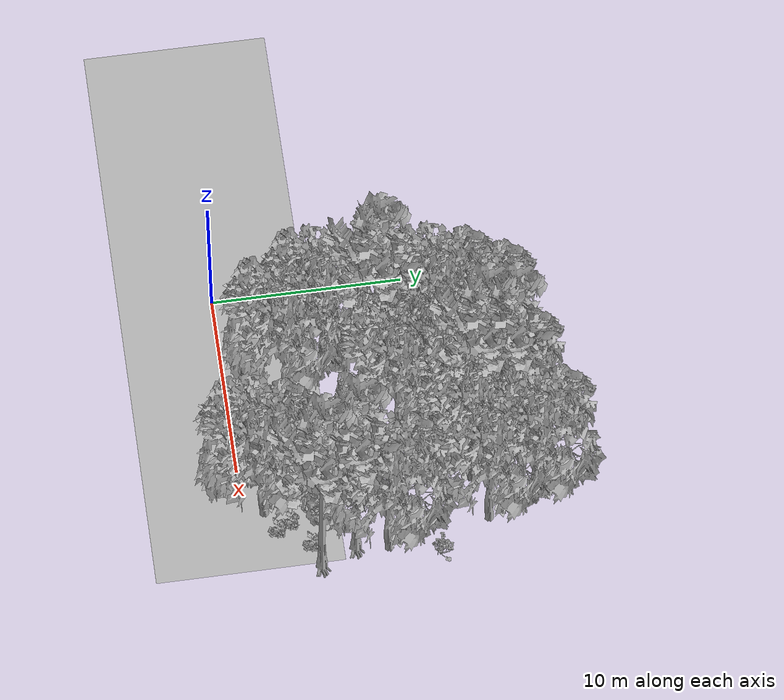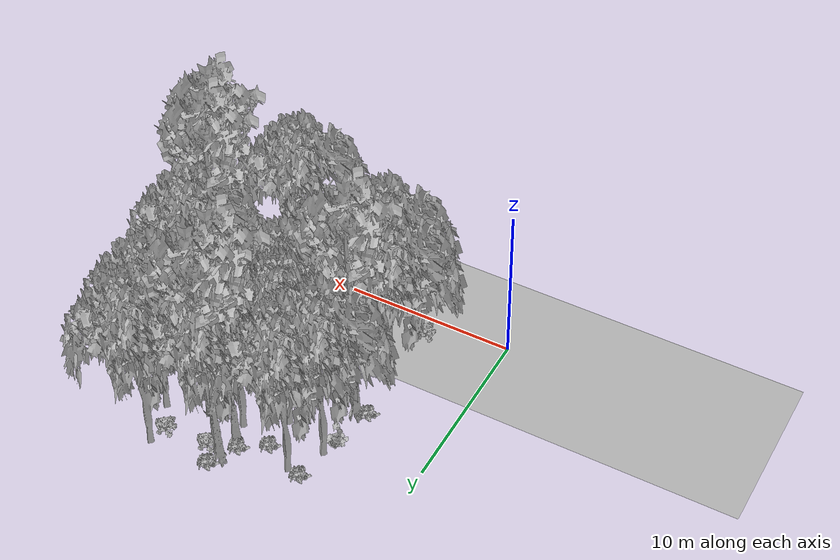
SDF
<sdf version="1.7">
 <world name="default">
  <model name="ground_plane">
   <static>1</static>
   <link name="link">
    <collision name="collision">
     <geometry><plane><normal>0 0 1</normal><size>100 100</size></plane></geometry>
     <surface><contact><ode><min_depth>0.01</min_depth><max_vel>0</max_vel></ode></contact></surface>
    </collision>
    <visual name="grass">
     <cast_shadows>0</cast_shadows>
     <geometry>
      <mesh>
       <scale>0.5814285714285714 0.18142857142857144 0.1</scale>
       <uri>file://grass_plane/meshes/grass_plane.dae</uri>
      </mesh>
     </geometry>
    </visual>
   </link>
  </model>
  <model name="Tree 3">
   <static>1</static>
   <pose>12.475687540186193 1.0689887489923429 0 1.57079 -0 0</pose>
   <link name="link">
    <collision name="collision">
     <geometry><mesh><scale>3.5 5 3.5</scale><uri>model://tree_2/meshes/tree_2.obj</uri></mesh></geometry>
    </collision>
    <visual name="visual">
     <geometry><mesh><scale>3.5 5 3.5</scale><uri>model://tree_2/meshes/tree_2.obj</uri></mesh></geometry>
    </visual>
   </link>
  </model>
  <model name="Tree 27">
   <static>1</static>
   <pose>4.450332211146737 5.303529250605308 0 1.57079 -0 0</pose>
   <link name="link">
    <collision name="collision">
     <geometry><mesh><scale>3.5 5 3.5</scale><uri>model://tree_2/meshes/tree_2.obj</uri></mesh></geometry>
    </collision>
    <visual name="visual">
     <geometry><mesh><scale>3.5 5 3.5</scale><uri>model://tree_2/meshes/tree_2.obj</uri></mesh></geometry>
    </visual>
   </link>
  </model>
  <model name="Tree 50">
   <static>1</static>
   <pose>8.896817221549703 8.603378647390691 0 1.57079 -0 0</pose>
   <link name="link">
    <collision name="collision">
     <geometry><mesh><scale>3.5 5 3.5</scale><uri>model://tree_2/meshes/tree_2.obj</uri></mesh></geometry>
    </collision>
    <visual name="visual">
     <geometry><mesh><scale>3.5 5 3.5</scale><uri>model://tree_2/meshes/tree_2.obj</uri></mesh></geometry>
    </visual>
   </link>
  </model>
  <model name="Tree 82">
   <static>1</static>
   <pose>11.944694339590306 11.921157599370545 0 1.57079 -0 0</pose>
   <link name="link">
    <collision name="collision">
     <geometry><mesh><scale>3.5 5 3.5</scale><uri>model://tree_2/meshes/tree_2.obj</uri></mesh></geometry>
    </collision>
    <visual name="visual">
     <geometry><mesh><scale>3.5 5 3.5</scale><uri>model://tree_2/meshes/tree_2.obj</uri></mesh></geometry>
    </visual>
   </link>
  </model>
  <model name="Tree 89">
   <static>1</static>
   <pose>10.026250354147187 13.990960080205614 0 1.57079 -0 0</pose>
   <link name="link">
    <collision name="collision">
     <geometry><mesh><scale>3.5 5 3.5</scale><uri>model://tree_9/meshes/tree_9.obj</uri></mesh></geometry>
    </collision>
    <visual name="visual">
     <geometry><mesh><scale>3.5 5 3.5</scale><uri>model://tree_9/meshes/tree_9.obj</uri></mesh></geometry>
    </visual>
   </link>
  </model>
  <model name="Tree 90">
   <static>1</static>
   <pose>7.990776472651035 10.471819842509994 0 1.57079 -0 0</pose>
   <link name="link">
    <collision name="collision">
     <geometry><mesh><scale>3.5 5 3.5</scale><uri>model://tree_2/meshes/tree_2.obj</uri></mesh></geometry>
    </collision>
    <visual name="visual">
     <geometry><mesh><scale>3.5 5 3.5</scale><uri>model://tree_2/meshes/tree_2.obj</uri></mesh></geometry>
    </visual>
   </link>
  </model>
  <model name="Tree 158">
   <static>1</static>
   <pose>5.8412621209232185 3.1785594466659433 0 1.57079 -0 0</pose>
   <link name="link">
    <collision name="collision">
     <geometry><mesh><scale>3.5 5 3.5</scale><uri>model://tree_2/meshes/tree_2.obj</uri></mesh></geometry>
    </collision>
    <visual name="visual">
     <geometry><mesh><scale>3.5 5 3.5</scale><uri>model://tree_2/meshes/tree_2.obj</uri></mesh></geometry>
    </visual>
   </link>
  </model>
  <model name="Tree 211">
   <static>1</static>
   <pose>9.900638270061641 11.686947051344358 0 1.57079 -0 0</pose>
   <link name="link">
    <collision name="collision">
     <geometry><mesh><scale>3.5 5 3.5</scale><uri>model://tree_2/meshes/tree_2.obj</uri></mesh></geometry>
    </collision>
    <visual name="visual">
     <geometry><mesh><scale>3.5 5 3.5</scale><uri>model://tree_2/meshes/tree_2.obj</uri></mesh></geometry>
    </visual>
   </link>
  </model>
  <model name="Tree 232">
   <static>1</static>
   <pose>15.300349705864335 7.1663267814160605 0 1.57079 -0 0</pose>
   <link name="link">
    <collision name="collision">
     <geometry><mesh><scale>3.5 5 3.5</scale><uri>model://tree_2/meshes/tree_2.obj</uri></mesh></geometry>
    </collision>
    <visual name="visual">
     <geometry><mesh><scale>3.5 5 3.5</scale><uri>model://tree_2/meshes/tree_2.obj</uri></mesh></geometry>
    </visual>
   </link>
  </model>
  <model name="Tree 236">
   <static>1</static>
   <pose>5.115500988632057 11.289368274359035 0 1.57079 -0 0</pose>
   <link name="link">
    <collision name="collision">
     <geometry><mesh><scale>3.5 5 3.5</scale><uri>model://tree_2/meshes/tree_2.obj</uri></mesh></geometry>
    </collision>
    <visual name="visual">
     <geometry><mesh><scale>3.5 5 3.5</scale><uri>model://tree_2/meshes/tree_2.obj</uri></mesh></geometry>
    </visual>
   </link>
  </model>
  <model name="Tree 257">
   <static>1</static>
   <pose>6.193996654167208 13.116079147379338 0 1.57079 -0 0</pose>
   <link name="link">
    <collision name="collision">
     <geometry><mesh><scale>3.5 5 3.5</scale><uri>model://tree_2/meshes/tree_2.obj</uri></mesh></geometry>
    </collision>
    <visual name="visual">
     <geometry><mesh><scale>3.5 5 3.5</scale><uri>model://tree_2/meshes/tree_2.obj</uri></mesh></geometry>
    </visual>
   </link>
  </model>
  <model name="Tree 258">
   <static>1</static>
   <pose>14.336045758288627 12.497751717985526 0 1.57079 -0 0</pose>
   <link name="link">
    <collision name="collision">
     <geometry><mesh><scale>3.5 5 3.5</scale><uri>model://tree_2/meshes/tree_2.obj</uri></mesh></geometry>
    </collision>
    <visual name="visual">
     <geometry><mesh><scale>3.5 5 3.5</scale><uri>model://tree_2/meshes/tree_2.obj</uri></mesh></geometry>
    </visual>
   </link>
  </model>
  <model name="Tree 274">
   <static>1</static>
   <pose>13.65984882644188 14.951615197421027 0 1.57079 -0 0</pose>
   <link name="link">
    <collision name="collision">
     <geometry><mesh><scale>3.5 5 3.5</scale><uri>model://tree_2/meshes/tree_2.obj</uri></mesh></geometry>
    </collision>
    <visual name="visual">
     <geometry><mesh><scale>3.5 5 3.5</scale><uri>model://tree_2/meshes/tree_2.obj</uri></mesh></geometry>
    </visual>
   </link>
  </model>
  <model name="Tree 281">
   <static>1</static>
   <pose>7.8306218776068235 10.317734798804594 0 1.57079 -0 0</pose>
   <link name="link">
    <collision name="collision">
     <geometry><mesh><scale>3.5 5 3.5</scale><uri>model://tree_2/meshes/tree_2.obj</uri></mesh></geometry>
    </collision>
    <visual name="visual">
     <geometry><mesh><scale>3.5 5 3.5</scale><uri>model://tree_2/meshes/tree_2.obj</uri></mesh></geometry>
    </visual>
   </link>
  </model>
  <model name="Tree 345">
   <static>1</static>
   <pose>10.140681766742262 13.905077605953942 0 1.57079 -0 0</pose>
   <link name="link">
    <collision name="collision">
     <geometry><mesh><scale>3.5 5 3.5</scale><uri>model://tree_2/meshes/tree_2.obj</uri></mesh></geometry>
    </collision>
    <visual name="visual">
     <geometry><mesh><scale>3.5 5 3.5</scale><uri>model://tree_2/meshes/tree_2.obj</uri></mesh></geometry>
    </visual>
   </link>
  </model>
  <model name="Tree 364">
   <static>1</static>
   <pose>9.867200795158148 12.632835940197783 0 1.57079 -0 0</pose>
   <link name="link">
    <collision name="collision">
     <geometry><mesh><scale>3.5 5 3.5</scale><uri>model://tree_9/meshes/tree_9.obj</uri></mesh></geometry>
    </collision>
    <visual name="visual">
     <geometry><mesh><scale>3.5 5 3.5</scale><uri>model://tree_9/meshes/tree_9.obj</uri></mesh></geometry>
    </visual>
   </link>
  </model>
  <model name="Tree 433">
   <static>1</static>
   <pose>5.232614835841353 7.910759243177349 0 1.57079 -0 0</pose>
   <link name="link">
    <collision name="collision">
     <geometry><mesh><scale>3.5 5 3.5</scale><uri>model://tree_9/meshes/tree_9.obj</uri></mesh></geometry>
    </collision>
    <visual name="visual">
     <geometry><mesh><scale>3.5 5 3.5</scale><uri>model://tree_9/meshes/tree_9.obj</uri></mesh></geometry>
    </visual>
   </link>
  </model>
  <model name="Tree 436">
   <static>1</static>
   <pose>15.110796631714557 5.491601293401583 0 1.57079 -0 0</pose>
   <link name="link">
    <collision name="collision">
     <geometry><mesh><scale>3.5 5 3.5</scale><uri>model://tree_9/meshes/tree_9.obj</uri></mesh></geometry>
    </collision>
    <visual name="visual">
     <geometry><mesh><scale>3.5 5 3.5</scale><uri>model://tree_9/meshes/tree_9.obj</uri></mesh></geometry>
    </visual>
   </link>
  </model>
  <model name="Tree 447">
   <static>1</static>
   <pose>15.903631339943004 3.6306653980789285 0 1.57079 -0 0</pose>
   <link name="link">
    <collision name="collision">
     <geometry><mesh><scale>3.5 5 3.5</scale><uri>model://tree_9/meshes/tree_9.obj</uri></mesh></geometry>
    </collision>
    <visual name="visual">
     <geometry><mesh><scale>3.5 5 3.5</scale><uri>model://tree_9/meshes/tree_9.obj</uri></mesh></geometry>
    </visual>
   </link>
  </model>
  <model name="Bush 5">
   <static>1</static>
   <pose>9.42722199818283 13.1008803519194 0 1.57079 -0 0</pose>
   <link name="link">
    <collision name="collision">
     <geometry><mesh><scale>2 2 2</scale><uri>model://bush_2/meshes/bush_2.obj</uri></mesh></geometry>
     <surface><contact><collide_without_contact>false</collide_without_contact></contact></surface>
    </collision>
    <visual name="visual">
     <geometry><mesh><scale>2 2 2</scale><uri>model://bush_2/meshes/bush_2.obj</uri></mesh></geometry>
    </visual>
   </link>
  </model>
  <model name="Bush 7">
   <static>1</static>
   <pose>10.273896037924203 14.741213497557474 0 1.57079 -0 0</pose>
   <link name="link">
    <collision name="collision">
     <geometry><mesh><scale>2 2 2</scale><uri>model://bush_2/meshes/bush_2.obj</uri></mesh></geometry>
     <surface><contact><collide_without_contact>false</collide_without_contact></contact></surface>
    </collision>
    <visual name="visual">
     <geometry><mesh><scale>2 2 2</scale><uri>model://bush_2/meshes/bush_2.obj</uri></mesh></geometry>
    </visual>
   </link>
  </model>
  <model name="Bush 37">
   <static>1</static>
   <pose>13.5306798204088 1.6551836851273762 0 1.57079 -0 0</pose>
   <link name="link">
    <collision name="collision">
     <geometry><mesh><scale>2 2 2</scale><uri>model://bush_2/meshes/bush_2.obj</uri></mesh></geometry>
     <surface><contact><collide_without_contact>false</collide_without_contact></contact></surface>
    </collision>
    <visual name="visual">
     <geometry><mesh><scale>2 2 2</scale><uri>model://bush_2/meshes/bush_2.obj</uri></mesh></geometry>
    </visual>
   </link>
  </model>
  <model name="Bush 56">
   <static>1</static>
   <pose>10.882455922654522 0.4644389042200743 0 1.57079 -0 0</pose>
   <link name="link">
    <collision name="collision">
     <geometry><mesh><scale>2 2 2</scale><uri>model://bush_0/meshes/bush_0.obj</uri></mesh></geometry>
     <surface><contact><collide_without_contact>false</collide_without_contact></contact></surface>
    </collision>
    <visual name="visual">
     <geometry><mesh><scale>2 2 2</scale><uri>model://bush_0/meshes/bush_0.obj</uri></mesh></geometry>
    </visual>
   </link>
  </model>
  <model name="Bush 58">
   <static>1</static>
   <pose>10.90937222432008 13.88462863298005 0 1.57079 -0 0</pose>
   <link name="link">
    <collision name="collision">
     <geometry><mesh><scale>2 2 2</scale><uri>model://bush_3/meshes/bush_3.obj</uri></mesh></geometry>
     <surface><contact><collide_without_contact>false</collide_without_contact></contact></surface>
    </collision>
    <visual name="visual">
     <geometry><mesh><scale>2 2 2</scale><uri>model://bush_3/meshes/bush_3.obj</uri></mesh></geometry>
    </visual>
   </link>
  </model>
  <model name="Bush 68">
   <static>1</static>
   <pose>12.854409107009921 10.642464828499289 0 1.57079 -0 0</pose>
   <link name="link">
    <collision name="collision">
     <geometry><mesh><scale>2 2 2</scale><uri>model://bush_3/meshes/bush_3.obj</uri></mesh></geometry>
     <surface><contact><collide_without_contact>false</collide_without_contact></contact></surface>
    </collision>
    <visual name="visual">
     <geometry><mesh><scale>2 2 2</scale><uri>model://bush_3/meshes/bush_3.obj</uri></mesh></geometry>
    </visual>
   </link>
  </model>
  <model name="Bush 97">
   <static>1</static>
   <pose>7.859323623053399 5.407627317709903 0 1.57079 -0 0</pose>
   <link name="link">
    <collision name="collision">
     <geometry><mesh><scale>2 2 2</scale><uri>model://bush_4/meshes/bush_4.obj</uri></mesh></geometry>
     <surface><contact><collide_without_contact>false</collide_without_contact></contact></surface>
    </collision>
    <visual name="visual">
     <geometry><mesh><scale>2 2 2</scale><uri>model://bush_4/meshes/bush_4.obj</uri></mesh></geometry>
    </visual>
   </link>
  </model>
  <model name="Bush 101">
   <static>1</static>
   <pose>16.0010451305709 9.801037349474864 0 1.57079 -0 0</pose>
   <link name="link">
    <collision name="collision">
     <geometry><mesh><scale>2 2 2</scale><uri>model://bush_4/meshes/bush_4.obj</uri></mesh></geometry>
     <surface><contact><collide_without_contact>false</collide_without_contact></contact></surface>
    </collision>
    <visual name="visual">
     <geometry><mesh><scale>2 2 2</scale><uri>model://bush_4/meshes/bush_4.obj</uri></mesh></geometry>
    </visual>
   </link>
  </model>
  <model name="Bush 121">
   <static>1</static>
   <pose>13.471699143136128 14.037750595631689 0 1.57079 -0 0</pose>
   <link name="link">
    <collision name="collision">
     <geometry><mesh><scale>2 2 2</scale><uri>model://bush_3/meshes/bush_3.obj</uri></mesh></geometry>
     <surface><contact><collide_without_contact>false</collide_without_contact></contact></surface>
    </collision>
    <visual name="visual">
     <geometry><mesh><scale>2 2 2</scale><uri>model://bush_3/meshes/bush_3.obj</uri></mesh></geometry>
    </visual>
   </link>
  </model>
  <model name="Bush 126">
   <static>1</static>
   <pose>5.564196875525468 13.153892281867783 0 1.57079 -0 0</pose>
   <link name="link">
    <collision name="collision">
     <geometry><mesh><scale>2 2 2</scale><uri>model://bush_2/meshes/bush_2.obj</uri></mesh></geometry>
     <surface><contact><collide_without_contact>false</collide_without_contact></contact></surface>
    </collision>
    <visual name="visual">
     <geometry><mesh><scale>2 2 2</scale><uri>model://bush_2/meshes/bush_2.obj</uri></mesh></geometry>
    </visual>
   </link>
  </model>
  <model name="Bush 139">
   <static>1</static>
   <pose>13.177468623711839 2.366803235796848 0 1.57079 -0 0</pose>
   <link name="link">
    <collision name="collision">
     <geometry><mesh><scale>2 2 2</scale><uri>model://bush_2/meshes/bush_2.obj</uri></mesh></geometry>
     <surface><contact><collide_without_contact>false</collide_without_contact></contact></surface>
    </collision>
    <visual name="visual">
     <geometry><mesh><scale>2 2 2</scale><uri>model://bush_2/meshes/bush_2.obj</uri></mesh></geometry>
    </visual>
   </link>
  </model>
  <model name="Bush 154">
   <static>1</static>
   <pose>4.848911197406274 10.762338813541671 0 1.57079 -0 0</pose>
   <link name="link">
    <collision name="collision">
     <geometry><mesh><scale>2 2 2</scale><uri>model://bush_0/meshes/bush_0.obj</uri></mesh></geometry>
     <surface><contact><collide_without_contact>false</collide_without_contact></contact></surface>
    </collision>
    <visual name="visual">
     <geometry><mesh><scale>2 2 2</scale><uri>model://bush_0/meshes/bush_0.obj</uri></mesh></geometry>
    </visual>
   </link>
  </model>
  <model name="Bush 173">
   <static>1</static>
   <pose>7.709113291649636 3.0554613788881184 0 1.57079 -0 0</pose>
   <link name="link">
    <collision name="collision">
     <geometry><mesh><scale>2 2 2</scale><uri>model://bush_5/meshes/bush_5.obj</uri></mesh></geometry>
     <surface><contact><collide_without_contact>false</collide_without_contact></contact></surface>
    </collision>
    <visual name="visual">
     <geometry><mesh><scale>2 2 2</scale><uri>model://bush_5/meshes/bush_5.obj</uri></mesh></geometry>
    </visual>
   </link>
  </model>
  <model name="Bush 179">
   <static>1</static>
   <pose>8.023090293188368 12.183787043993636 0 1.57079 -0 0</pose>
   <link name="link">
    <collision name="collision">
     <geometry><mesh><scale>2 2 2</scale><uri>model://bush_2/meshes/bush_2.obj</uri></mesh></geometry>
     <surface><contact><collide_without_contact>false</collide_without_contact></contact></surface>
    </collision>
    <visual name="visual">
     <geometry><mesh><scale>2 2 2</scale><uri>model://bush_2/meshes/bush_2.obj</uri></mesh></geometry>
    </visual>
   </link>
  </model>
  <model name="Bush 204">
   <static>1</static>
   <pose>9.128552304170995 9.744642112303978 0 1.57079 -0 0</pose>
   <link name="link">
    <collision name="collision">
     <geometry><mesh><scale>2 2 2</scale><uri>model://bush_1/meshes/bush_1.obj</uri></mesh></geometry>
     <surface><contact><collide_without_contact>false</collide_without_contact></contact></surface>
    </collision>
    <visual name="visual">
     <geometry><mesh><scale>2 2 2</scale><uri>model://bush_1/meshes/bush_1.obj</uri></mesh></geometry>
    </visual>
   </link>
  </model>
  <model name="Bush 223">
   <static>1</static>
   <pose>7.655645011107659 2.7982266998406793 0 1.57079 -0 0</pose>
   <link name="link">
    <collision name="collision">
     <geometry><mesh><scale>2 2 2</scale><uri>model://bush_3/meshes/bush_3.obj</uri></mesh></geometry>
     <surface><contact><collide_without_contact>false</collide_without_contact></contact></surface>
    </collision>
    <visual name="visual">
     <geometry><mesh><scale>2 2 2</scale><uri>model://bush_3/meshes/bush_3.obj</uri></mesh></geometry>
    </visual>
   </link>
  </model>
  <model name="Bush 237">
   <static>1</static>
   <pose>9.909807030387896 3.80886657598818 0 1.57079 -0 0</pose>
   <link name="link">
    <collision name="collision">
     <geometry><mesh><scale>2 2 2</scale><uri>model://bush_1/meshes/bush_1.obj</uri></mesh></geometry>
     <surface><contact><collide_without_contact>false</collide_without_contact></contact></surface>
    </collision>
    <visual name="visual">
     <geometry><mesh><scale>2 2 2</scale><uri>model://bush_1/meshes/bush_1.obj</uri></mesh></geometry>
    </visual>
   </link>
  </model>
  <model name="Bush 242">
   <static>1</static>
   <pose>4.502684616663771 7.788026398829725 0 1.57079 -0 0</pose>
   <link name="link">
    <collision name="collision">
     <geometry><mesh><scale>2 2 2</scale><uri>model://bush_2/meshes/bush_2.obj</uri></mesh></geometry>
     <surface><contact><collide_without_contact>false</collide_without_contact></contact></surface>
    </collision>
    <visual name="visual">
     <geometry><mesh><scale>2 2 2</scale><uri>model://bush_2/meshes/bush_2.obj</uri></mesh></geometry>
    </visual>
   </link>
  </model>
  <model name="Bush 263">
   <static>1</static>
   <pose>12.367428849940787 3.5409622037471706 0 1.57079 -0 0</pose>
   <link name="link">
    <collision name="collision">
     <geometry><mesh><scale>2 2 2</scale><uri>model://bush_2/meshes/bush_2.obj</uri></mesh></geometry>
     <surface><contact><collide_without_contact>false</collide_without_contact></contact></surface>
    </collision>
    <visual name="visual">
     <geometry><mesh><scale>2 2 2</scale><uri>model://bush_2/meshes/bush_2.obj</uri></mesh></geometry>
    </visual>
   </link>
  </model>
  <model name="Bush 272">
   <static>1</static>
   <pose>4.6074543843537725 1.3591584603132354 0 1.57079 -0 0</pose>
   <link name="link">
    <collision name="collision">
     <geometry><mesh><scale>2 2 2</scale><uri>model://bush_3/meshes/bush_3.obj</uri></mesh></geometry>
     <surface><contact><collide_without_contact>false</collide_without_contact></contact></surface>
    </collision>
    <visual name="visual">
     <geometry><mesh><scale>2 2 2</scale><uri>model://bush_3/meshes/bush_3.obj</uri></mesh></geometry>
    </visual>
   </link>
  </model>
  <model name="Bush 280">
   <static>1</static>
   <pose>14.539033266160622 3.295671953289542 0 1.57079 -0 0</pose>
   <link name="link">
    <collision name="collision">
     <geometry><mesh><scale>2 2 2</scale><uri>model://bush_2/meshes/bush_2.obj</uri></mesh></geometry>
     <surface><contact><collide_without_contact>false</collide_without_contact></contact></surface>
    </collision>
    <visual name="visual">
     <geometry><mesh><scale>2 2 2</scale><uri>model://bush_2/meshes/bush_2.obj</uri></mesh></geometry>
    </visual>
   </link>
  </model>
  <model name="Bush 302">
   <static>1</static>
   <pose>12.327226044251013 8.212758467511968 0 1.57079 -0 0</pose>
   <link name="link">
    <collision name="collision">
     <geometry><mesh><scale>2 2 2</scale><uri>model://bush_2/meshes/bush_2.obj</uri></mesh></geometry>
     <surface><contact><collide_without_contact>false</collide_without_contact></contact></surface>
    </collision>
    <visual name="visual">
     <geometry><mesh><scale>2 2 2</scale><uri>model://bush_2/meshes/bush_2.obj</uri></mesh></geometry>
    </visual>
   </link>
  </model>
  <model name="Bush 309">
   <static>1</static>
   <pose>13.438461045895814 7.916231626940455 0 1.57079 -0 0</pose>
   <link name="link">
    <collision name="collision">
     <geometry><mesh><scale>2 2 2</scale><uri>model://bush_5/meshes/bush_5.obj</uri></mesh></geometry>
     <surface><contact><collide_without_contact>false</collide_without_contact></contact></surface>
    </collision>
    <visual name="visual">
     <geometry><mesh><scale>2 2 2</scale><uri>model://bush_5/meshes/bush_5.obj</uri></mesh></geometry>
    </visual>
   </link>
  </model>
  <model name="Bush 335">
   <static>1</static>
   <pose>11.473801638302234 9.258263655490882 0 1.57079 -0 0</pose>
   <link name="link">
    <collision name="collision">
     <geometry><mesh><scale>2 2 2</scale><uri>model://bush_3/meshes/bush_3.obj</uri></mesh></geometry>
     <surface><contact><collide_without_contact>false</collide_without_contact></contact></surface>
    </collision>
    <visual name="visual">
     <geometry><mesh><scale>2 2 2</scale><uri>model://bush_3/meshes/bush_3.obj</uri></mesh></geometry>
    </visual>
   </link>
  </model>
 </world>
</sdf>
